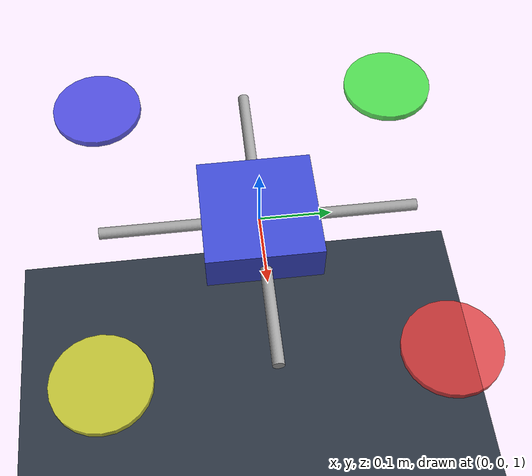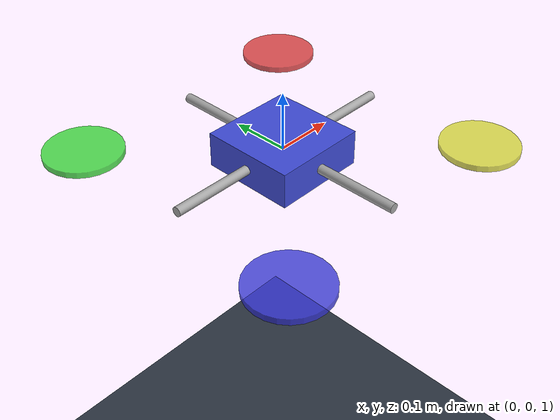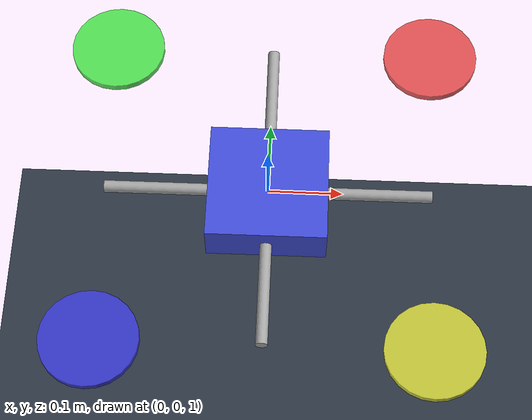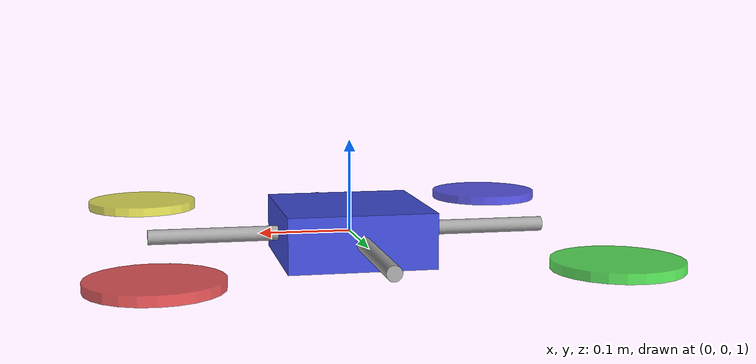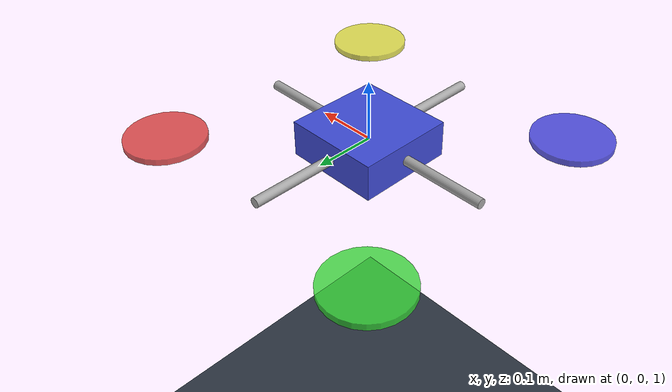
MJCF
<mujoco model="quadrotor_ccmpc">
  <compiler angle="radian"/>

  <option timestep="0.005" gravity="0 0 -9.81" density="1.2" viscosity="1.8e-5">
    <flag gravity="enable"/>
  </option>

  <size nconmax="100"/>

  <default>
    <motor ctrlrange="0.0 12.0" ctrllimited="true"/>
    <general ctrlrange="0.0 12.0" ctrllimited="true"
             dyntype="none" gaintype="fixed" biastype="none"/>
  </default>

  <asset>
    <texture name="grid" type="2d" builtin="checker"
             rgb1="0.15 0.18 0.22" rgb2="0.20 0.24 0.30"
             width="512" height="512" mark="none"/>
    <material name="grid" texture="grid" texrepeat="8 8" reflectance="0.2"/>
  </asset>

  <visual>
    <headlight ambient="0.5 0.5 0.5" diffuse="0.6 0.6 0.6" specular="0.2 0.2 0.2"/>
    <map znear="0.01"/>
  </visual>

  <worldbody>
    <light pos="3 3 8" directional="true"/>
    <geom name="floor" type="plane" size="10 10 0.1" material="grid"/>

    <body name="quadrotor" pos="0 0 1" euler="0 0 0">
      <freejoint/>

      <!-- Centre body -->
      <geom name="body" type="box" size="0.08 0.08 0.03" rgba="0.25 0.30 0.85 1"/>
      <geom name="body_inertia" type="ellipsoid" size="0.08 0.08 0.03" mass="1.0" rgba="0 0 0 0"/>

      <!-- Arms (visual only) -->
      <geom name="arm_f" type="cylinder" size="0.008 0.15"
            fromto="0 0 0 0.22 0 0" rgba="0.65 0.65 0.65 0.9"/>
      <geom name="arm_b" type="cylinder" size="0.008 0.15"
            fromto="0 0 0 -0.22 0 0" rgba="0.65 0.65 0.65 0.9"/>
      <geom name="arm_l" type="cylinder" size="0.008 0.15"
            fromto="0 0 0 0 0.22 0" rgba="0.65 0.65 0.65 0.9"/>
      <geom name="arm_r" type="cylinder" size="0.008 0.15"
            fromto="0 0 0 0 -0.22 0" rgba="0.65 0.65 0.65 0.9"/>

      <!-- Rotor sites (force application points) -->
      <site name="rotor1_site" pos="0.22 0.22 0" group="3"/>
      <site name="rotor2_site" pos="-0.22 0.22 0" group="3"/>
      <site name="rotor3_site" pos="-0.22 -0.22 0" group="3"/>
      <site name="rotor4_site" pos="0.22 -0.22 0" group="3"/>

      <!-- Rotor visuals -->
      <body name="rotor1" pos="0.22 0.22 0">
        <geom type="cylinder" size="0.065 0.005" rgba="0.9 0.25 0.25 0.85"/>
      </body>
      <body name="rotor2" pos="-0.22 0.22 0">
        <geom type="cylinder" size="0.065 0.005" rgba="0.25 0.9 0.25 0.85"/>
      </body>
      <body name="rotor3" pos="-0.22 -0.22 0">
        <geom type="cylinder" size="0.065 0.005" rgba="0.25 0.25 0.9 0.85"/>
      </body>
      <body name="rotor4" pos="0.22 -0.22 0">
        <geom type="cylinder" size="0.065 0.005" rgba="0.9 0.9 0.25 0.85"/>
      </body>
    </body>
  </worldbody>

  <!-- Actuators: 4 rotors applying +z force at each site (body frame) -->
  <actuator>
    <general name="rotor1" site="rotor1_site" gear="0 0 1 0 0 0"/>
    <general name="rotor2" site="rotor2_site" gear="0 0 1 0 0 0"/>
    <general name="rotor3" site="rotor3_site" gear="0 0 1 0 0 0"/>
    <general name="rotor4" site="rotor4_site" gear="0 0 1 0 0 0"/>
  </actuator>
</mujoco>
